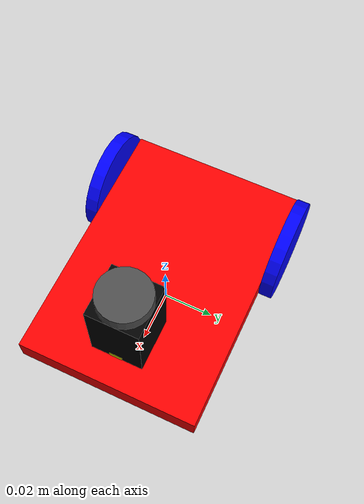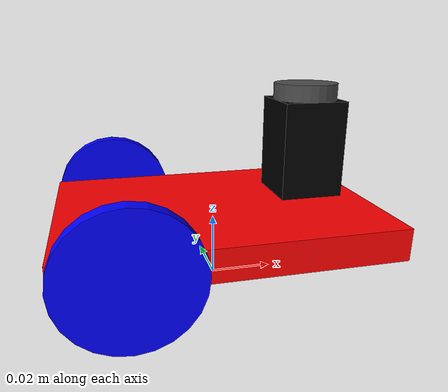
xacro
<?xml version="1.0"?>
<robot xmlns:xacro="http://www.ros.org/wiki/xacro" name="robodrive">

<xacro:include filename="$(find robodrive_description)/urdf/robodrive/macro.urdf.xacro"/>
<xacro:include filename="$(find robodrive_description)/urdf/robodrive/macro.internal_config.xacro"/>
<xacro:include filename="$(find robodrive_description)/urdf/robodrive/macro.sensor.xacro"/>
<xacro:include filename="$(find robodrive_description)/urdf/robodrive/macro.controller.xacro"/>

<xacro:robot_urdf/>
<xacro:robodrive_dsr_config_coeff/>
<xacro:robodrive_imu/>
<xacro:robodrive_lidar/>
<xacro:robodrive_diff_drive/>

</robot>

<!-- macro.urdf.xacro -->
<robot xmlns:xacro="http://www.ros.org/wiki/xacro" name="robodrive">
    <xacro:include filename="$(find robodrive_description)/urdf/robodrive/macro.intertia.xacro"/>

    <xacro:property name="mass_base_link" value="3"/>
    <xacro:property name="mass_wheel" value="0.2"/>
    <xacro:property name="mass_caster_wheel" value="0.2"/>
    <xacro:property name="mass_imu" value="0.1"/>
    <xacro:property name="mass_lidar" value="0.1"/>
    <xacro:property name="mass_lidar_stand" value="0.1"/>

        <xacro:macro name="robot_urdf">

        <link name="base_footprint"/>
        <joint name="base_footprint_joint" type="fixed">
            <parent link="base_footprint"/>
            <child link="link_base"/>
            <origin xyz="0 0 0.02" rpy="0 0 3.14"/>
        </joint>

        <link name="link_base">
            <visual>
                <geometry>
                    <box size="0.1 0.07 0.01"/>
                </geometry>
                <material name="red">
                    <color rgba="1 0 0 1"/>
                </material>
            </visual>

            <collision>
                <geometry>
                    <box size="0.1 0.07 0.01"/>
                </geometry>
            </collision>

            <inertial>
                <xacro:box_inertia m="${mass_base_link}" x="0.1" y="0.07" z="0.01"/>
            </inertial>
        </link>

        <!-- Wheels -->
        <joint name="joint_wheel_right" type="continuous">
            <parent link="link_base"/>
            <child link="link_wheel_right"/>
            <origin xyz="0.03 0.0375 0.0" rpy="-1.57 0 3.14"/>
            <axis xyz="0.0 0.0 1.0"/>
        </joint>

        <link name="link_wheel_right">
            <visual>
                <geometry>
                    <cylinder length="0.005" radius="0.02"/>
                </geometry>
                <material name="blue">
                    <color rgba="0 0 1 1"/>
                </material>
            </visual>

            <collision>
                <geometry>
                    <cylinder length="0.005" radius="0.02"/>
                </geometry>
            </collision>

            <inertial>
                <xacro:wheel_inertia m="${mass_wheel}" r="0.02" h="0.005"/>
            </inertial>
        </link>

        <joint name="joint_wheel_left" type="continuous">
            <parent link="link_base"/>
            <child link="link_wheel_left"/>
            <origin xyz="0.03 -0.0375 0.0" rpy="-1.57 0 3.14"/>
            <axis xyz="0.0 0.0 1.0"/>
        </joint>

        <link name="link_wheel_left">
            <visual>
                <geometry>
                    <cylinder length="0.005" radius="0.02"/>
                </geometry>
                <material name="blue">
                    <color rgba="0 0 1 1"/>
                </material>
            </visual>

            <collision>
                <geometry>
                    <cylinder length="0.005" radius="0.02"/>
                </geometry>
            </collision>

            <inertial>
                <xacro:wheel_inertia m="${mass_wheel}" r="0.02" h="0.005"/>
            </inertial>
        </link>

        <joint name="joint_wheel_front" type="fixed">
            <parent link="link_base"/>
            <child link="link_wheel_front"/>
            <origin xyz="-0.03 0.0 -0.01" rpy="0 0 0"/>
        </joint>

        <link name="link_wheel_front">
            <visual>
                <geometry>
                    <sphere radius="0.008"/>
                </geometry>
                <material name="blue">
                    <color rgba="0 0 1 1"/>
                </material>
            </visual>

            <collision>
                <geometry>
                    <sphere radius="0.008"/>
                </geometry>
            </collision>

            <inertial>
                <xacro:caster_wheel_intertia m="${mass_caster_wheel}" r="0.008"/>
            </inertial>
        </link>

        <!-- Lidar -->
        <link name="link_lidar_stand">
            <visual>
                <geometry>
                    <box size="0.02 0.02 0.03"/>
                </geometry>
                <material name="black">
                    <color rgba="0 0 0 1"/>
                </material>
            </visual>
        </link>
        <joint name="joint_lidar_stand" type="fixed">
            <parent link="link_base"/>
            <child link="link_lidar_stand"/>
            <origin xyz="-0.03 0.0 0.0225" rpy="0 0 0"/>
        </joint>

        <link name="link_lidar">
            <visual>
                <geometry>
                    <cylinder length="0.005" radius="0.01"/>
                </geometry>
                <material name="gray">
                    <color rgba="0.3 0.3 0.3 1"/>
                </material>
            </visual>
        </link>
        <joint name="joint_lidar" type="fixed">
            <parent link="link_lidar_stand"/>
            <child link="link_lidar"/>
            <origin xyz="0.0 0.0 0.0175" rpy="0 0 0"/>
        </joint>

    </xacro:macro>
</robot>

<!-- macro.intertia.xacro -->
<robot xmlns:xacro="http://www.ros.org/wiki/xacro">

  <xacro:macro name="box_inertia" params="m x y z">
      <mass value="${m}"/>
      <inertia
        ixx="${m*(y*y+z*z)/12}" ixy = "0" ixz = "0"
        iyy="${m*(x*x+y*y)/12}" iyz = "0"
        izz="${m*(x*x+z*z)/12}"
      />
  </xacro:macro>

  <xacro:macro name="wheel_inertia" params="m r h">
    <mass value="${m}"/>
    <inertia
      ixx="${m*(3*r*r+h*h)/12}" ixy = "0" ixz = "0"
      iyy="${m*(3*r*r+h*h)/12}" iyz = "0"
      izz="${m*r*r/2}"
    />
  </xacro:macro>

  <xacro:macro name="caster_wheel_intertia" params="m r">
    <mass value="${m}"/>
    <inertia
      ixx="${2*(m*r*r)/5}" ixy = "0" ixz = "0"
      iyy="${2*(m*r*r)/5}" iyz = "0"
      izz="${2*(m*r*r)/5}"
    />
  </xacro:macro>

</robot>

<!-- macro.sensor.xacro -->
<robot xmlns:xacro="http://www.ros.org/wiki/xacro" name="hexapod">

<xacro:macro name="robodrive_imu">

  <link name="link_imu">
        <inertial>
            <mass value="0.000001"/>
            <inertia ixx="0.0" ixy="0.0" ixz="0.0" iyy="0.0" iyz="0.0" izz="0.0"/>
        </inertial>
        <visual>
            <origin xyz="0.0 0.0 0.0" rpy="0.0 0.0 0.0"/>
            <geometry>
                <box size="0.002 0.0001 0.005"/>
            </geometry>
            <material name="yellow">
                <color rgba="1.0 1.0 0.0 1.0"/>
            </material>
        </visual>
    </link>
    <joint name="joint_base_imu" type="fixed">
        <parent link="link_base"/>
        <child link="link_imu"/>
        <origin xyz="-0.0405 0 0.01" rpy="1.57 1.57 0"/>
    </joint>
    <gazebo reference="link_imu">
      <material>Gazebo/Yellow</material>
        <sensor name="imu_sensor" type="imu">
          <always_on>true</always_on>
          <update_rate>100</update_rate>
          <visualize>false</visualize>
          <serviceName>imu_service</serviceName>
          <plugin filename="libgazebo_ros_imu_sensor.so" name="imu_plugin">
            <topicName>/imu</topicName>
            <bodyName>link_imu</bodyName>
            <updateRateHZ>10.0</updateRateHZ>
            <gaussianNoise>0.0</gaussianNoise>
            <xyzOffset>0 0 0</xyzOffset>
            <rpyOffset>0 0 0</rpyOffset>
            <frameName>link_imu</frameName>
            <!-- Some Noise -->
            <initialOrientationAsReference>false</initialOrientationAsReference>
            <gyroscopeNoiseDensity>0.0003394</gyroscopeNoiseDensity>
            <gyroscopeRandomWalk>3.8785e-05</gyroscopeRandomWalk>
            <gyroscopeBiasCorrelationTime>1000.0</gyroscopeBiasCorrelationTime>
            <gyroscopeTurnOnBiasSigma>0.0087</gyroscopeTurnOnBiasSigma>
            <accelerometerNoiseDensity>0.004</accelerometerNoiseDensity>
            <accelerometerRandomWalk>0.006</accelerometerRandomWalk>
            <accelerometerBiasCorrelationTime>300.0</accelerometerBiasCorrelationTime>
            <accelerometerTurnOnBiasSigma>0.196</accelerometerTurnOnBiasSigma>
          </plugin>
          <pose>0 0 0 0 0 0</pose>
        </sensor>
    </gazebo>
</xacro:macro>

<xacro:macro name="robodrive_lidar">
  <gazebo reference="link_lidar">
    <sensor type="ray" name="head_rplidar_sensor">
      <pose>0 0 0 0 0 0</pose>
      <visualize>false</visualize>
      <update_rate>40</update_rate>
      <ray>
        <scan>
          <horizontal>
            <samples>720</samples>
            <resolution>1</resolution>
            <min_angle>-3.14159265</min_angle>
            <max_angle>3.14159265</max_angle>
          </horizontal>
        </scan>
        <range>
          <min>0.1</min>
          <max>3.5</max>
          <resolution>0.01</resolution>
        </range>
        <noise>
          <type>gaussian</type>
          <mean>0.0</mean>
          <stddev>0.01</stddev>
        </noise>
      </ray>
      <plugin name="gazebo_ros_head_rplidar_controller" filename="libgazebo_ros_laser.so">
        <topicName>scan</topicName>
        <frameName>link_lidar</frameName>
      </plugin>
    </sensor>
  </gazebo>
</xacro:macro>
</robot>
